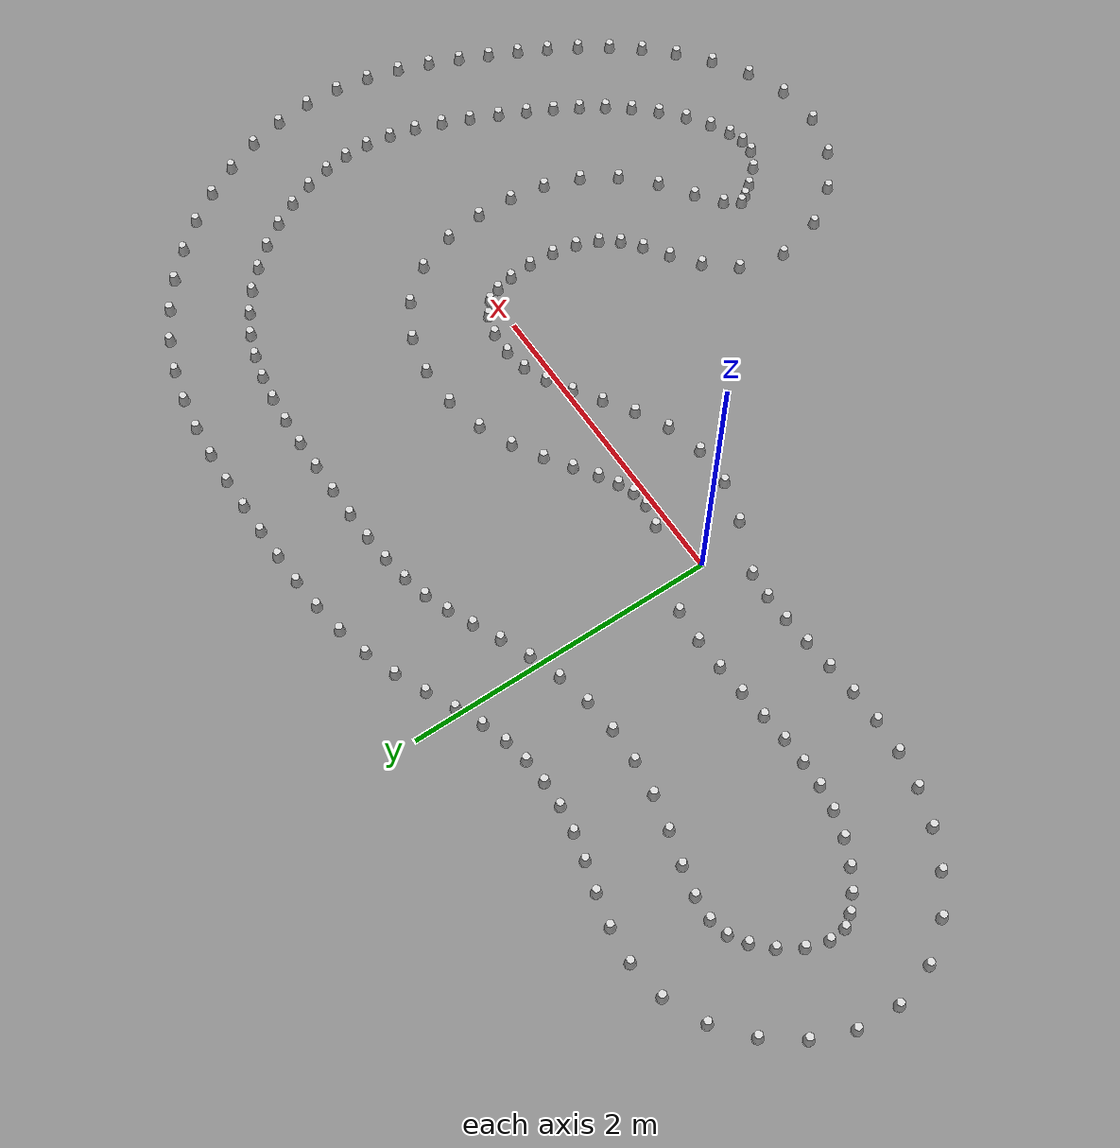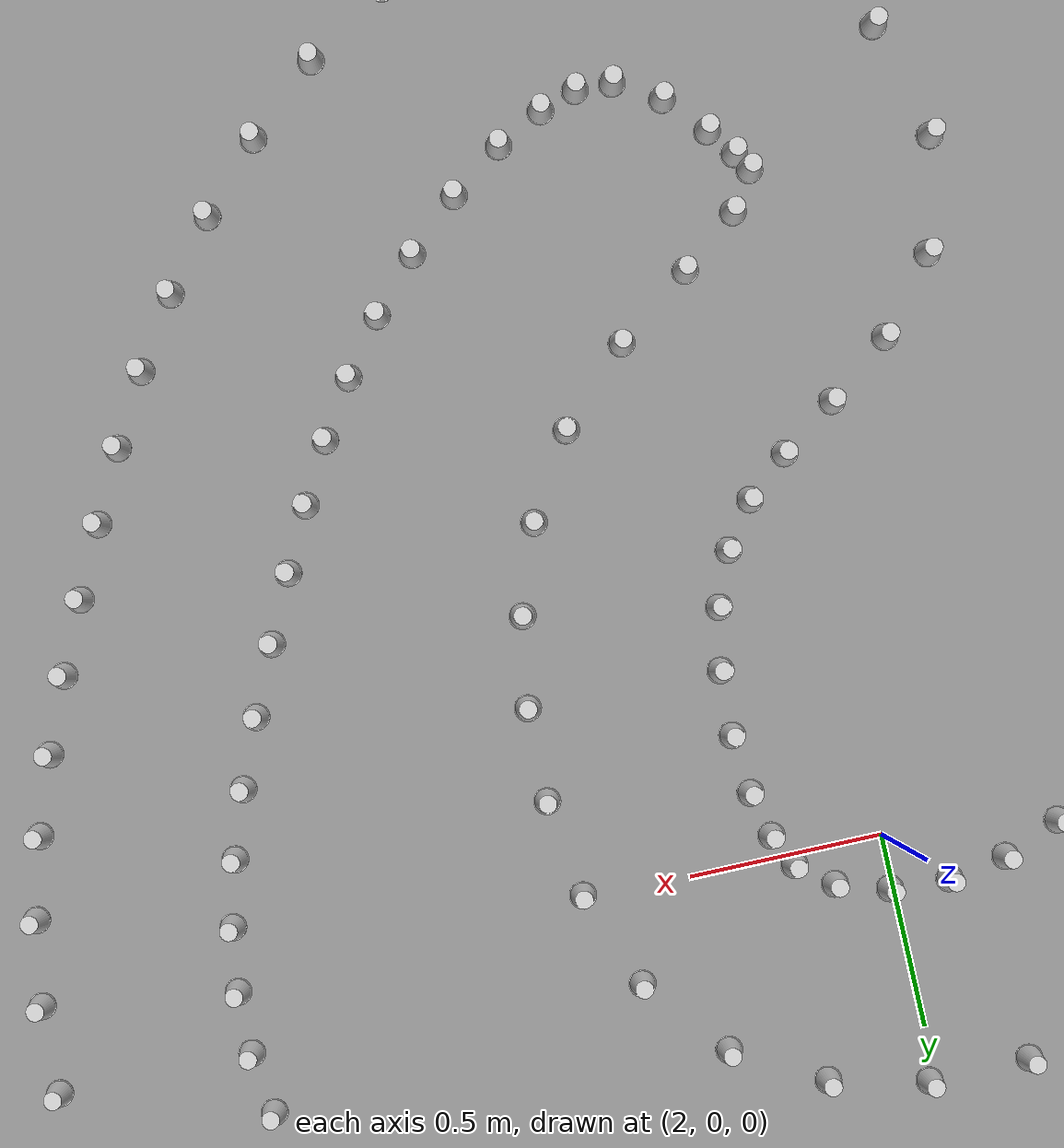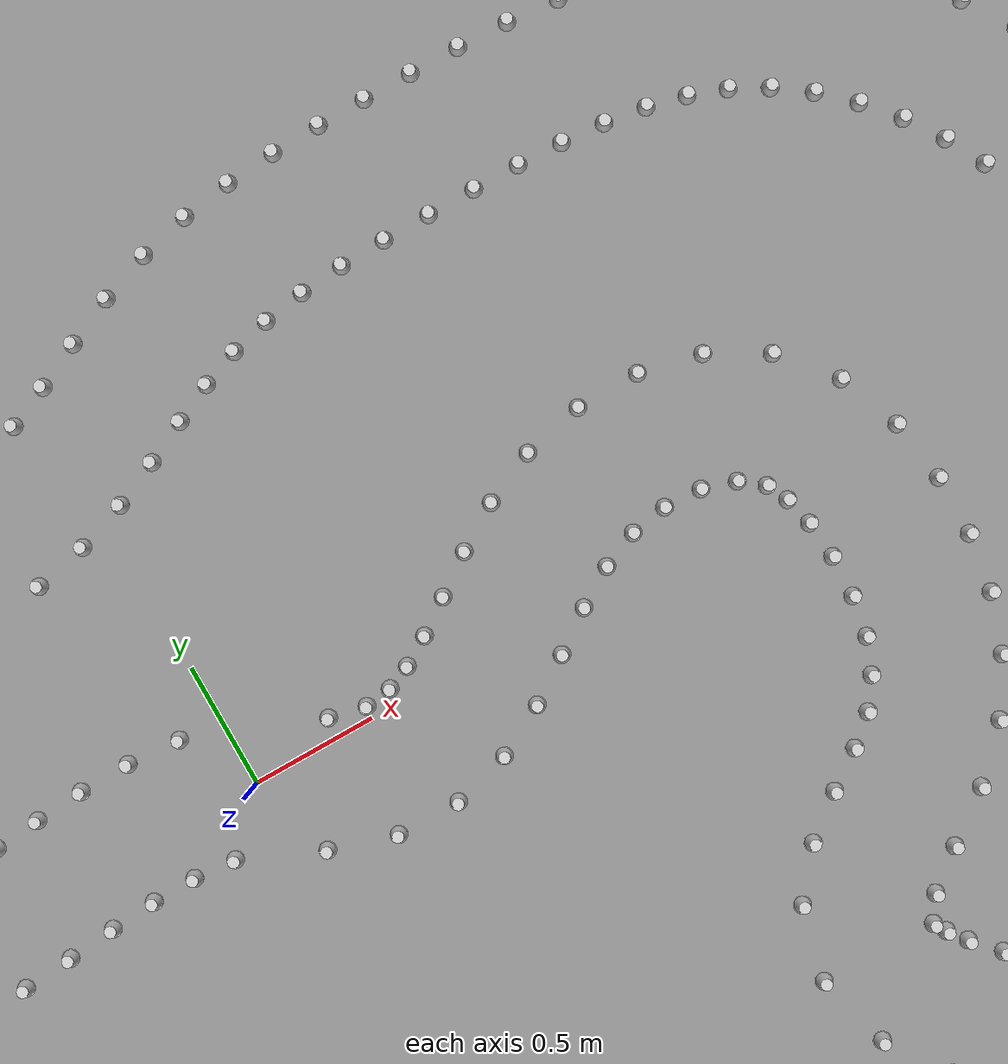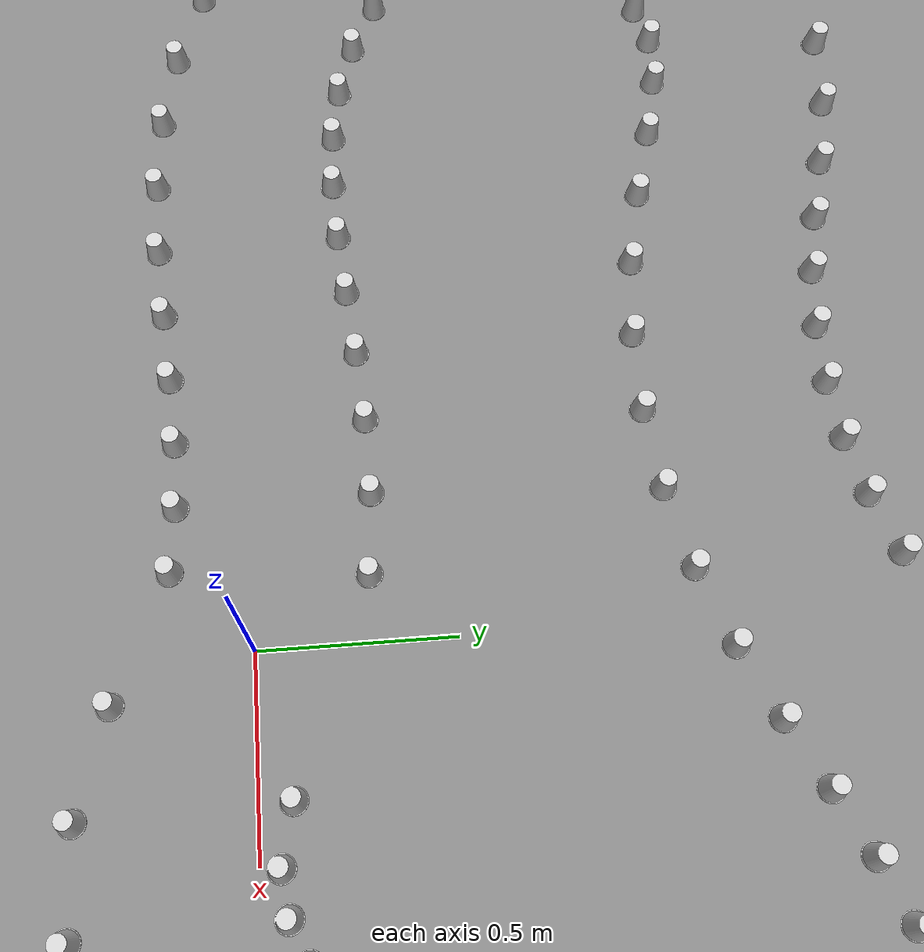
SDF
<?xml version='1.0' encoding='UTF-8'?>
<sdf version="1.4">
  <model name="some track">
    <include>
      <uri>model://cone_yellow</uri>
      <pose>0.10806867978345727 -0.3510957375104182 0 0 0 0</pose>
      <name>cone_right_0</name>
    </include>
    <include>
      <uri>model://cone_yellow</uri>
      <pose>0.37071405419927905 -0.4328431370972129 0 0 0 0</pose>
      <name>cone_right_1</name>
    </include>
    <include>
      <uri>model://cone_yellow</uri>
      <pose>0.6285052913206914 -0.4369264111387018 0 0 0 0</pose>
      <name>cone_right_2</name>
    </include>
    <include>
      <uri>model://cone_yellow</uri>
      <pose>0.8649515672007367 -0.37195761095079005 0 0 0 0</pose>
      <name>cone_right_3</name>
    </include>
    <include>
      <uri>model://cone_yellow</uri>
      <pose>1.0679124369581585 -0.26561798624160415 0 0 0 0</pose>
      <name>cone_right_4</name>
    </include>
    <include>
      <uri>model://cone_yellow</uri>
      <pose>1.2437053670939795 -0.14619759484670644 0 0 0 0</pose>
      <name>cone_right_5</name>
    </include>
    <include>
      <uri>model://cone_yellow</uri>
      <pose>1.4038176292596791 -0.0330357180250723 0 0 0 0</pose>
      <name>cone_right_6</name>
    </include>
    <include>
      <uri>model://cone_yellow</uri>
      <pose>1.5563454451901821 0.05964842265900802 0 0 0 0</pose>
      <name>cone_right_7</name>
    </include>
    <include>
      <uri>model://cone_yellow</uri>
      <pose>1.7058293318458795 0.12097913928125698 0 0 0 0</pose>
      <name>cone_right_8</name>
    </include>
    <include>
      <uri>model://cone_yellow</uri>
      <pose>1.8570160648529523 0.14606397107937272 0 0 0 0</pose>
      <name>cone_right_9</name>
    </include>
    <include>
      <uri>model://cone_yellow</uri>
      <pose>2.0103848713780446 0.13791186375818315 0 0 0 0</pose>
      <name>cone_right_10</name>
    </include>
    <include>
      <uri>model://cone_yellow</uri>
      <pose>2.144935152615976 0.09594175182890519 0 0 0 0</pose>
      <name>cone_right_11</name>
    </include>
    <include>
      <uri>model://cone_yellow</uri>
      <pose>2.2347253854991163 0.026377761263574995 0 0 0 0</pose>
      <name>cone_right_12</name>
    </include>
    <include>
      <uri>model://cone_yellow</uri>
      <pose>2.275957598559696 -0.05904760210889351 0 0 0 0</pose>
      <name>cone_right_13</name>
    </include>
    <include>
      <uri>model://cone_yellow</uri>
      <pose>2.304107577638766 -0.1767105913695149 0 0 0 0</pose>
      <name>cone_right_14</name>
    </include>
    <include>
      <uri>model://cone_yellow</uri>
      <pose>2.3176501076443294 -0.3297327340860391 0 0 0 0</pose>
      <name>cone_right_15</name>
    </include>
    <include>
      <uri>model://cone_yellow</uri>
      <pose>2.3106537596096657 -0.4974228092794692 0 0 0 0</pose>
      <name>cone_right_16</name>
    </include>
    <include>
      <uri>model://cone_yellow</uri>
      <pose>2.280170122506995 -0.655995264267445 0 0 0 0</pose>
      <name>cone_right_17</name>
    </include>
    <include>
      <uri>model://cone_yellow</uri>
      <pose>2.2245029126510754 -0.7926733279705555 0 0 0 0</pose>
      <name>cone_right_18</name>
    </include>
    <include>
      <uri>model://cone_yellow</uri>
      <pose>2.1430553206487035 -0.9062019138436952 0 0 0 0</pose>
      <name>cone_right_19</name>
    </include>
    <include>
      <uri>model://cone_yellow</uri>
      <pose>2.032068460034787 -1.0016545619188646 0 0 0 0</pose>
      <name>cone_right_20</name>
    </include>
    <include>
      <uri>model://cone_yellow</uri>
      <pose>1.8848763346627555 -1.1054517247424098 0 0 0 0</pose>
      <name>cone_right_21</name>
    </include>
    <include>
      <uri>model://cone_yellow</uri>
      <pose>1.718198731530026 -1.235636255994414 0 0 0 0</pose>
      <name>cone_right_22</name>
    </include>
    <include>
      <uri>model://cone_yellow</uri>
      <pose>1.5662160444261144 -1.4199843507388406 0 0 0 0</pose>
      <name>cone_right_23</name>
    </include>
    <include>
      <uri>model://cone_yellow</uri>
      <pose>1.4948194487415893 -1.7115225978364978 0 0 0 0</pose>
      <name>cone_right_24</name>
    </include>
    <include>
      <uri>model://cone_yellow</uri>
      <pose>1.575473803442982 -2.015007464635909 0 0 0 0</pose>
      <name>cone_right_25</name>
    </include>
    <include>
      <uri>model://cone_yellow</uri>
      <pose>1.7441786409229332 -2.2535267850802936 0 0 0 0</pose>
      <name>cone_right_26</name>
    </include>
    <include>
      <uri>model://cone_yellow</uri>
      <pose>1.9677488768502536 -2.4249657413902876 0 0 0 0</pose>
      <name>cone_right_27</name>
    </include>
    <include>
      <uri>model://cone_yellow</uri>
      <pose>2.2412495621944464 -2.5064942236239625 0 0 0 0</pose>
      <name>cone_right_28</name>
    </include>
    <include>
      <uri>model://cone_yellow</uri>
      <pose>2.5232072303301307 -2.4815937812488325 0 0 0 0</pose>
      <name>cone_right_29</name>
    </include>
    <include>
      <uri>model://cone_yellow</uri>
      <pose>2.7742721420513785 -2.380557124308995 0 0 0 0</pose>
      <name>cone_right_30</name>
    </include>
    <include>
      <uri>model://cone_yellow</uri>
      <pose>2.9914910156931027 -2.2382249664186835 0 0 0 0</pose>
      <name>cone_right_31</name>
    </include>
    <include>
      <uri>model://cone_yellow</uri>
      <pose>3.17792649547707 -2.0764639412313017 0 0 0 0</pose>
      <name>cone_right_32</name>
    </include>
    <include>
      <uri>model://cone_yellow</uri>
      <pose>3.3352189229942635 -1.9087999569287255 0 0 0 0</pose>
      <name>cone_right_33</name>
    </include>
    <include>
      <uri>model://cone_yellow</uri>
      <pose>3.4694923332802015 -1.7365065553970955 0 0 0 0</pose>
      <name>cone_right_34</name>
    </include>
    <include>
      <uri>model://cone_yellow</uri>
      <pose>3.585039381978961 -1.5607407068125956 0 0 0 0</pose>
      <name>cone_right_35</name>
    </include>
    <include>
      <uri>model://cone_yellow</uri>
      <pose>3.6859615227179434 -1.3832365438609382 0 0 0 0</pose>
      <name>cone_right_36</name>
    </include>
    <include>
      <uri>model://cone_yellow</uri>
      <pose>3.776756562346189 -1.20532282425605 0 0 0 0</pose>
      <name>cone_right_37</name>
    </include>
    <include>
      <uri>model://cone_yellow</uri>
      <pose>3.8620503353341316 -1.0277724095366967 0 0 0 0</pose>
      <name>cone_right_38</name>
    </include>
    <include>
      <uri>model://cone_yellow</uri>
      <pose>3.9449333925626875 -0.8478788391132766 0 0 0 0</pose>
      <name>cone_right_39</name>
    </include>
    <include>
      <uri>model://cone_yellow</uri>
      <pose>4.023830812805049 -0.6597577392440686 0 0 0 0</pose>
      <name>cone_right_40</name>
    </include>
    <include>
      <uri>model://cone_yellow</uri>
      <pose>4.093623040994661 -0.4625050220177086 0 0 0 0</pose>
      <name>cone_right_41</name>
    </include>
    <include>
      <uri>model://cone_yellow</uri>
      <pose>4.148479005426398 -0.2556395512708997 0 0 0 0</pose>
      <name>cone_right_42</name>
    </include>
    <include>
      <uri>model://cone_yellow</uri>
      <pose>4.18198590625303 -0.038723621801074 0 0 0 0</pose>
      <name>cone_right_43</name>
    </include>
    <include>
      <uri>model://cone_yellow</uri>
      <pose>4.187118005407224 0.18793619976483975 0 0 0 0</pose>
      <name>cone_right_44</name>
    </include>
    <include>
      <uri>model://cone_yellow</uri>
      <pose>4.159848504458583 0.41820390756935827 0 0 0 0</pose>
      <name>cone_right_45</name>
    </include>
    <include>
      <uri>model://cone_yellow</uri>
      <pose>4.102661222478233 0.6433773608710858 0 0 0 0</pose>
      <name>cone_right_46</name>
    </include>
    <include>
      <uri>model://cone_yellow</uri>
      <pose>4.018899352163004 0.8603234352674015 0 0 0 0</pose>
      <name>cone_right_47</name>
    </include>
    <include>
      <uri>model://cone_yellow</uri>
      <pose>3.9113877283626186 1.066517374008716 0 0 0 0</pose>
      <name>cone_right_48</name>
    </include>
    <include>
      <uri>model://cone_yellow</uri>
      <pose>3.7825092979829975 1.2594242225590704 0 0 0 0</pose>
      <name>cone_right_49</name>
    </include>
    <include>
      <uri>model://cone_yellow</uri>
      <pose>3.6342863940175443 1.4363843226847217 0 0 0 0</pose>
      <name>cone_right_50</name>
    </include>
    <include>
      <uri>model://cone_yellow</uri>
      <pose>3.468433940177946 1.5945364462928413 0 0 0 0</pose>
      <name>cone_right_51</name>
    </include>
    <include>
      <uri>model://cone_yellow</uri>
      <pose>3.28639926553553 1.7307256792168295 0 0 0 0</pose>
      <name>cone_right_52</name>
    </include>
    <include>
      <uri>model://cone_yellow</uri>
      <pose>3.0894898755314357 1.8413939138938185 0 0 0 0</pose>
      <name>cone_right_53</name>
    </include>
    <include>
      <uri>model://cone_yellow</uri>
      <pose>2.881793246858548 1.9240703892709048 0 0 0 0</pose>
      <name>cone_right_54</name>
    </include>
    <include>
      <uri>model://cone_yellow</uri>
      <pose>2.670070183167121 1.9807054399779687 0 0 0 0</pose>
      <name>cone_right_55</name>
    </include>
    <include>
      <uri>model://cone_yellow</uri>
      <pose>2.4575551331675394 2.0163603913874466 0 0 0 0</pose>
      <name>cone_right_56</name>
    </include>
    <include>
      <uri>model://cone_yellow</uri>
      <pose>2.2462229857992533 2.0363371618146715 0 0 0 0</pose>
      <name>cone_right_57</name>
    </include>
    <include>
      <uri>model://cone_yellow</uri>
      <pose>2.037453766363674 2.045641828317779 0 0 0 0</pose>
      <name>cone_right_58</name>
    </include>
    <include>
      <uri>model://cone_yellow</uri>
      <pose>1.8324178295527642 2.0488876605486617 0 0 0 0</pose>
      <name>cone_right_59</name>
    </include>
    <include>
      <uri>model://cone_yellow</uri>
      <pose>1.632122488877368 2.0501853841343047 0 0 0 0</pose>
      <name>cone_right_60</name>
    </include>
    <include>
      <uri>model://cone_yellow</uri>
      <pose>1.4330730018119584 2.049773306986464 0 0 0 0</pose>
      <name>cone_right_61</name>
    </include>
    <include>
      <uri>model://cone_yellow</uri>
      <pose>1.2313143994656377 2.043908344652148 0 0 0 0</pose>
      <name>cone_right_62</name>
    </include>
    <include>
      <uri>model://cone_yellow</uri>
      <pose>1.0272766181419422 2.028347990599178 0 0 0 0</pose>
      <name>cone_right_63</name>
    </include>
    <include>
      <uri>model://cone_yellow</uri>
      <pose>0.8216409826453225 1.998497783669258 0 0 0 0</pose>
      <name>cone_right_64</name>
    </include>
    <include>
      <uri>model://cone_yellow</uri>
      <pose>0.6153673160194553 1.9494063990157342 0 0 0 0</pose>
      <name>cone_right_65</name>
    </include>
    <include>
      <uri>model://cone_yellow</uri>
      <pose>0.4107325757053944 1.8769030603657844 0 0 0 0</pose>
      <name>cone_right_66</name>
    </include>
    <include>
      <uri>model://cone_yellow</uri>
      <pose>0.2174032236135958 1.789841472590485 0 0 0 0</pose>
      <name>cone_right_67</name>
    </include>
    <include>
      <uri>model://cone_yellow</uri>
      <pose>0.03818030860539977 1.7034920191378928 0 0 0 0</pose>
      <name>cone_right_68</name>
    </include>
    <include>
      <uri>model://cone_yellow</uri>
      <pose>-0.13048017638817333 1.6292281568680251 0 0 0 0</pose>
      <name>cone_right_69</name>
    </include>
    <include>
      <uri>model://cone_yellow</uri>
      <pose>-0.29087667794513383 1.576179395634047 0 0 0 0</pose>
      <name>cone_right_70</name>
    </include>
    <include>
      <uri>model://cone_yellow</uri>
      <pose>-0.44930885448068963 1.5449956240646694 0 0 0 0</pose>
      <name>cone_right_71</name>
    </include>
    <include>
      <uri>model://cone_yellow</uri>
      <pose>-0.6122515939375015 1.5322528647168072 0 0 0 0</pose>
      <name>cone_right_72</name>
    </include>
    <include>
      <uri>model://cone_yellow</uri>
      <pose>-0.7790943255590582 1.5377034722690452 0 0 0 0</pose>
      <name>cone_right_73</name>
    </include>
    <include>
      <uri>model://cone_yellow</uri>
      <pose>-0.9485861701289358 1.5613042777744812 0 0 0 0</pose>
      <name>cone_right_74</name>
    </include>
    <include>
      <uri>model://cone_yellow</uri>
      <pose>-1.1199808553145727 1.602600579408511 0 0 0 0</pose>
      <name>cone_right_75</name>
    </include>
    <include>
      <uri>model://cone_yellow</uri>
      <pose>-1.3029705136230758 1.6547963221581237 0 0 0 0</pose>
      <name>cone_right_76</name>
    </include>
    <include>
      <uri>model://cone_yellow</uri>
      <pose>-1.5054122684394475 1.7030935143364136 0 0 0 0</pose>
      <name>cone_right_77</name>
    </include>
    <include>
      <uri>model://cone_yellow</uri>
      <pose>-1.729652474254516 1.7256403686554591 0 0 0 0</pose>
      <name>cone_right_78</name>
    </include>
    <include>
      <uri>model://cone_yellow</uri>
      <pose>-1.9779711784090308 1.6918484148107185 0 0 0 0</pose>
      <name>cone_right_79</name>
    </include>
    <include>
      <uri>model://cone_yellow</uri>
      <pose>-2.229177209771272 1.5741286828618515 0 0 0 0</pose>
      <name>cone_right_80</name>
    </include>
    <include>
      <uri>model://cone_yellow</uri>
      <pose>-2.4385682200976477 1.3943667900161134 0 0 0 0</pose>
      <name>cone_right_81</name>
    </include>
    <include>
      <uri>model://cone_yellow</uri>
      <pose>-2.5975309892152953 1.1760221515127638 0 0 0 0</pose>
      <name>cone_right_82</name>
    </include>
    <include>
      <uri>model://cone_yellow</uri>
      <pose>-2.6977482931235035 0.93008566065435 0 0 0 0</pose>
      <name>cone_right_83</name>
    </include>
    <include>
      <uri>model://cone_yellow</uri>
      <pose>-2.7197442175858777 0.6616358891265923 0 0 0 0</pose>
      <name>cone_right_84</name>
    </include>
    <include>
      <uri>model://cone_yellow</uri>
      <pose>-2.635800029489961 0.39037293201776185 0 0 0 0</pose>
      <name>cone_right_85</name>
    </include>
    <include>
      <uri>model://cone_yellow</uri>
      <pose>-2.467931840176189 0.16995847560529542 0 0 0 0</pose>
      <name>cone_right_86</name>
    </include>
    <include>
      <uri>model://cone_yellow</uri>
      <pose>-2.2588656612170794 0.005827235656673063 0 0 0 0</pose>
      <name>cone_right_87</name>
    </include>
    <include>
      <uri>model://cone_yellow</uri>
      <pose>-2.032205278276173 -0.11236410947061982 0 0 0 0</pose>
      <name>cone_right_88</name>
    </include>
    <include>
      <uri>model://cone_yellow</uri>
      <pose>-1.80228689852342 -0.1898166331580345 0 0 0 0</pose>
      <name>cone_right_89</name>
    </include>
    <include>
      <uri>model://cone_yellow</uri>
      <pose>-1.5749801581884557 -0.23187500779975068 0 0 0 0</pose>
      <name>cone_right_90</name>
    </include>
    <include>
      <uri>model://cone_yellow</uri>
      <pose>-1.3542667810502194 -0.2460933852054405 0 0 0 0</pose>
      <name>cone_right_91</name>
    </include>
    <include>
      <uri>model://cone_yellow</uri>
      <pose>-1.1422084389227418 -0.24132816961400455 0 0 0 0</pose>
      <name>cone_right_92</name>
    </include>
    <include>
      <uri>model://cone_yellow</uri>
      <pose>-0.9393105831872635 -0.22632539704416071 0 0 0 0</pose>
      <name>cone_right_93</name>
    </include>
    <include>
      <uri>model://cone_yellow</uri>
      <pose>-0.7453267427142705 -0.20905768561484717 0 0 0 0</pose>
      <name>cone_right_94</name>
    </include>
    <include>
      <uri>model://cone_yellow</uri>
      <pose>-0.5598932155156982 -0.1965804388748037 0 0 0 0</pose>
      <name>cone_right_95</name>
    </include>
    <include>
      <uri>model://cone_yellow</uri>
      <pose>-0.3827167577551564 -0.19502998273427824 0 0 0 0</pose>
      <name>cone_right_96</name>
    </include>
    <include>
      <uri>model://cone_yellow</uri>
      <pose>-0.21328052147826695 -0.2096317413130372 0 0 0 0</pose>
      <name>cone_right_97</name>
    </include>
    <include>
      <uri>model://cone_blue</uri>
      <pose>0.3581064667551549 0.08189514586508193 0 0 0 0</pose>
      <name>cone_left_0</name>
    </include>
    <include>
      <uri>model://cone_blue</uri>
      <pose>0.5057299817799402 0.04858255737653833 0 0 0 0</pose>
      <name>cone_left_1</name>
    </include>
    <include>
      <uri>model://cone_blue</uri>
      <pose>0.6145818102483052 0.06287968793855722 0 0 0 0</pose>
      <name>cone_left_2</name>
    </include>
    <include>
      <uri>model://cone_blue</uri>
      <pose>0.7134332093543835 0.10453182989291268 0 0 0 0</pose>
      <name>cone_left_3</name>
    </include>
    <include>
      <uri>model://cone_blue</uri>
      <pose>0.8267050572266077 0.17235347397360146 0 0 0 0</pose>
      <name>cone_left_4</name>
    </include>
    <include>
      <uri>model://cone_blue</uri>
      <pose>0.9603603206111302 0.26576791904205577 0 0 0 0</pose>
      <name>cone_left_5</name>
    </include>
    <include>
      <uri>model://cone_blue</uri>
      <pose>1.1151921611036464 0.37524768738312064 0 0 0 0</pose>
      <name>cone_left_6</name>
    </include>
    <include>
      <uri>model://cone_blue</uri>
      <pose>1.2953847902164075 0.4861452415869557 0 0 0 0</pose>
      <name>cone_left_7</name>
    </include>
    <include>
      <uri>model://cone_blue</uri>
      <pose>1.5086781242361995 0.580469510603709 0 0 0 0</pose>
      <name>cone_left_8</name>
    </include>
    <include>
      <uri>model://cone_blue</uri>
      <pose>1.758163424013462 0.636194724449388 0 0 0 0</pose>
      <name>cone_left_9</name>
    </include>
    <include>
      <uri>model://cone_blue</uri>
      <pose>2.018240652610797 0.637850146650405 0 0 0 0</pose>
      <name>cone_left_10</name>
    </include>
    <include>
      <uri>model://cone_blue</uri>
      <pose>2.2699675997602604 0.5800562911283479 0 0 0 0</pose>
      <name>cone_left_11</name>
    </include>
    <include>
      <uri>model://cone_blue</uri>
      <pose>2.4992719916327735 0.45065961708958585 0 0 0 0</pose>
      <name>cone_left_12</name>
    </include>
    <include>
      <uri>model://cone_blue</uri>
      <pose>2.6781801023296063 0.23796596233061865 0 0 0 0</pose>
      <name>cone_left_13</name>
    </include>
    <include>
      <uri>model://cone_blue</uri>
      <pose>2.77702859554006 -0.014396972633428873 0 0 0 0</pose>
      <name>cone_left_14</name>
    </include>
    <include>
      <uri>model://cone_blue</uri>
      <pose>2.8138622280532193 -0.2683036566119842 0 0 0 0</pose>
      <name>cone_left_15</name>
    </include>
    <include>
      <uri>model://cone_blue</uri>
      <pose>2.8104936426648313 -0.5100755286472097 0 0 0 0</pose>
      <name>cone_left_16</name>
    </include>
    <include>
      <uri>model://cone_blue</uri>
      <pose>2.772701936677323 -0.7420906301711082 0 0 0 0</pose>
      <name>cone_left_17</name>
    </include>
    <include>
      <uri>model://cone_blue</uri>
      <pose>2.6928188166188796 -0.9678310114755012 0 0 0 0</pose>
      <name>cone_left_18</name>
    </include>
    <include>
      <uri>model://cone_blue</uri>
      <pose>2.561608703541177 -1.1797216858333384 0 0 0 0</pose>
      <name>cone_left_19</name>
    </include>
    <include>
      <uri>model://cone_blue</uri>
      <pose>2.3755021928419193 -1.36504590905052 0 0 0 0</pose>
      <name>cone_left_20</name>
    </include>
    <include>
      <uri>model://cone_blue</uri>
      <pose>2.1778712059950838 -1.5106109593316666 0 0 0 0</pose>
      <name>cone_left_21</name>
    </include>
    <include>
      <uri>model://cone_blue</uri>
      <pose>2.0263063638259005 -1.6294251422279267 0 0 0 0</pose>
      <name>cone_left_22</name>
    </include>
    <include>
      <uri>model://cone_blue</uri>
      <pose>1.9621457790342716 -1.7253360254568846 0 0 0 0</pose>
      <name>cone_left_23</name>
    </include>
    <include>
      <uri>model://cone_blue</uri>
      <pose>1.9909374773214275 -1.7737070148399174 0 0 0 0</pose>
      <name>cone_left_24</name>
    </include>
    <include>
      <uri>model://cone_blue</uri>
      <pose>2.0457249867474885 -1.8451138961858011 0 0 0 0</pose>
      <name>cone_left_25</name>
    </include>
    <include>
      <uri>model://cone_blue</uri>
      <pose>2.1403033187560676 -1.9484280476007763 0 0 0 0</pose>
      <name>cone_left_26</name>
    </include>
    <include>
      <uri>model://cone_blue</uri>
      <pose>2.2560473448346703 -2.016451367888157 0 0 0 0</pose>
      <name>cone_left_27</name>
    </include>
    <include>
      <uri>model://cone_blue</uri>
      <pose>2.352090951319699 -2.0189348052380756 0 0 0 0</pose>
      <name>cone_left_28</name>
    </include>
    <include>
      <uri>model://cone_blue</uri>
      <pose>2.4491976847934667 -1.9871015293687282 0 0 0 0</pose>
      <name>cone_left_29</name>
    </include>
    <include>
      <uri>model://cone_blue</uri>
      <pose>2.5725552497554895 -1.9230527031691673 0 0 0 0</pose>
      <name>cone_left_30</name>
    </include>
    <include>
      <uri>model://cone_blue</uri>
      <pose>2.7109549115541824 -1.82434153563828 0 0 0 0</pose>
      <name>cone_left_31</name>
    </include>
    <include>
      <uri>model://cone_blue</uri>
      <pose>2.847172009651097 -1.7014953157357864 0 0 0 0</pose>
      <name>cone_left_32</name>
    </include>
    <include>
      <uri>model://cone_blue</uri>
      <pose>2.968717634376448 -1.5686870265049013 0 0 0 0</pose>
      <name>cone_left_33</name>
    </include>
    <include>
      <uri>model://cone_blue</uri>
      <pose>3.0736692151223135 -1.4310166879190296 0 0 0 0</pose>
      <name>cone_left_34</name>
    </include>
    <include>
      <uri>model://cone_blue</uri>
      <pose>3.166206367588582 -1.2876493190745917 0 0 0 0</pose>
      <name>cone_left_35</name>
    </include>
    <include>
      <uri>model://cone_blue</uri>
      <pose>3.2507001954524535 -1.1371723713630217 0 0 0 0</pose>
      <name>cone_left_36</name>
    </include>
    <include>
      <uri>model://cone_blue</uri>
      <pose>3.3311254491694884 -0.9785786711475419 0 0 0 0</pose>
      <name>cone_left_37</name>
    </include>
    <include>
      <uri>model://cone_blue</uri>
      <pose>3.4112839449200956 -0.8114170045358036 0 0 0 0</pose>
      <name>cone_left_38</name>
    </include>
    <include>
      <uri>model://cone_blue</uri>
      <pose>3.4907813441580706 -0.6387235931119144 0 0 0 0</pose>
      <name>cone_left_39</name>
    </include>
    <include>
      <uri>model://cone_blue</uri>
      <pose>3.5625936327148247 -0.46672856087349746 0 0 0 0</pose>
      <name>cone_left_40</name>
    </include>
    <include>
      <uri>model://cone_blue</uri>
      <pose>3.621920527482872 -0.29668361584027925 0 0 0 0</pose>
      <name>cone_left_41</name>
    </include>
    <include>
      <uri>model://cone_blue</uri>
      <pose>3.664673261993296 -0.12941751428391457 0 0 0 0</pose>
      <name>cone_left_42</name>
    </include>
    <include>
      <uri>model://cone_blue</uri>
      <pose>3.687344797919285 0.03428441848466543 0 0 0 0</pose>
      <name>cone_left_43</name>
    </include>
    <include>
      <uri>model://cone_blue</uri>
      <pose>3.687158900166706 0.19433097005790875 0 0 0 0</pose>
      <name>cone_left_44</name>
    </include>
    <include>
      <uri>model://cone_blue</uri>
      <pose>3.6639799659353156 0.3540603770865511 0 0 0 0</pose>
      <name>cone_left_45</name>
    </include>
    <include>
      <uri>model://cone_blue</uri>
      <pose>3.6191660978461377 0.5159706716550376 0 0 0 0</pose>
      <name>cone_left_46</name>
    </include>
    <include>
      <uri>model://cone_blue</uri>
      <pose>3.5538250952169417 0.6767316720369455 0 0 0 0</pose>
      <name>cone_left_47</name>
    </include>
    <include>
      <uri>model://cone_blue</uri>
      <pose>3.4695831152126075 0.8324048288528256 0 0 0 0</pose>
      <name>cone_left_48</name>
    </include>
    <include>
      <uri>model://cone_blue</uri>
      <pose>3.3685082029418085 0.9790617905095957 0 0 0 0</pose>
      <name>cone_left_49</name>
    </include>
    <include>
      <uri>model://cone_blue</uri>
      <pose>3.2530290174257495 1.1128989091119579 0 0 0 0</pose>
      <name>cone_left_50</name>
    </include>
    <include>
      <uri>model://cone_blue</uri>
      <pose>3.1258816269673333 1.2303141066237064 0 0 0 0</pose>
      <name>cone_left_51</name>
    </include>
    <include>
      <uri>model://cone_blue</uri>
      <pose>2.9900696945098355 1.3279989910823975 0 0 0 0</pose>
      <name>cone_left_52</name>
    </include>
    <include>
      <uri>model://cone_blue</uri>
      <pose>2.8487209581702673 1.4031812618255208 0 0 0 0</pose>
      <name>cone_left_53</name>
    </include>
    <include>
      <uri>model://cone_blue</uri>
      <pose>2.70150733028896 1.457704665523261 0 0 0 0</pose>
      <name>cone_left_54</name>
    </include>
    <include>
      <uri>model://cone_blue</uri>
      <pose>2.544510740951751 1.4967273139530781 0 0 0 0</pose>
      <name>cone_left_55</name>
    </include>
    <include>
      <uri>model://cone_blue</uri>
      <pose>2.3772741600590113 1.5228475087220112 0 0 0 0</pose>
      <name>cone_left_56</name>
    </include>
    <include>
      <uri>model://cone_blue</uri>
      <pose>2.2006001172820335 1.5384229584941993 0 0 0 0</pose>
      <name>cone_left_57</name>
    </include>
    <include>
      <uri>model://cone_blue</uri>
      <pose>2.0158860059301613 1.5461072131909768 0 0 0 0</pose>
      <name>cone_left_58</name>
    </include>
    <include>
      <uri>model://cone_blue</uri>
      <pose>1.8247388899221773 1.5489466301399244 0 0 0 0</pose>
      <name>cone_left_59</name>
    </include>
    <include>
      <uri>model://cone_blue</uri>
      <pose>1.6289079100471275 1.5501957177581442 0 0 0 0</pose>
      <name>cone_left_60</name>
    </include>
    <include>
      <uri>model://cone_blue</uri>
      <pose>1.434131039945501 1.5497744264324091 0 0 0 0</pose>
      <name>cone_left_61</name>
    </include>
    <include>
      <uri>model://cone_blue</uri>
      <pose>1.2460753933285251 1.5441262790873864 0 0 0 0</pose>
      <name>cone_left_62</name>
    </include>
    <include>
      <uri>model://cone_blue</uri>
      <pose>1.0659986404691626 1.5298496405649074 0 0 0 0</pose>
      <name>cone_left_63</name>
    </include>
    <include>
      <uri>model://cone_blue</uri>
      <pose>0.8949070631394557 1.5038948303329205 0 0 0 0</pose>
      <name>cone_left_64</name>
    </include>
    <include>
      <uri>model://cone_blue</uri>
      <pose>0.7335284448722224 1.463569031547731 0 0 0 0</pose>
      <name>cone_left_65</name>
    </include>
    <include>
      <uri>model://cone_blue</uri>
      <pose>0.5809153654798264 1.406756468264351 0 0 0 0</pose>
      <name>cone_left_66</name>
    </include>
    <include>
      <uri>model://cone_blue</uri>
      <pose>0.4244083741722593 1.3347053746569273 0 0 0 0</pose>
      <name>cone_left_67</name>
    </include>
    <include>
      <uri>model://cone_blue</uri>
      <pose>0.255346817938755 1.2531158350162568 0 0 0 0</pose>
      <name>cone_left_68</name>
    </include>
    <include>
      <uri>model://cone_blue</uri>
      <pose>0.0713636983151452 1.171779744208465 0 0 0 0</pose>
      <name>cone_left_69</name>
    </include>
    <include>
      <uri>model://cone_blue</uri>
      <pose>-0.13102493318746275 1.1024205754544876 0 0 0 0</pose>
      <name>cone_left_70</name>
    </include>
    <include>
      <uri>model://cone_blue</uri>
      <pose>-0.347296280886446 1.0555128002304932 0 0 0 0</pose>
      <name>cone_left_71</name>
    </include>
    <include>
      <uri>model://cone_blue</uri>
      <pose>-0.5680606052766526 1.0342095367611197 0 0 0 0</pose>
      <name>cone_left_72</name>
    </include>
    <include>
      <uri>model://cone_blue</uri>
      <pose>-0.790746702178685 1.037839268590572 0 0 0 0</pose>
      <name>cone_left_73</name>
    </include>
    <include>
      <uri>model://cone_blue</uri>
      <pose>-1.0134236758730613 1.0655260028885396 0 0 0 0</pose>
      <name>cone_left_74</name>
    </include>
    <include>
      <uri>model://cone_blue</uri>
      <pose>-1.2336955502510645 1.115703292339153 0 0 0 0</pose>
      <name>cone_left_75</name>
    </include>
    <include>
      <uri>model://cone_blue</uri>
      <pose>-1.4394227253812257 1.1737757468120071 0 0 0 0</pose>
      <name>cone_left_76</name>
    </include>
    <include>
      <uri>model://cone_blue</uri>
      <pose>-1.6208937894437392 1.216612252306173 0 0 0 0</pose>
      <name>cone_left_77</name>
    </include>
    <include>
      <uri>model://cone_blue</uri>
      <pose>-1.7739271462464525 1.2276044729410975 0 0 0 0</pose>
      <name>cone_left_78</name>
    </include>
    <include>
      <uri>model://cone_blue</uri>
      <pose>-1.8944075067472825 1.1988807558528438 0 0 0 0</pose>
      <name>cone_left_79</name>
    </include>
    <include>
      <uri>model://cone_blue</uri>
      <pose>-1.9971996893910808 1.1311993092160546 0 0 0 0</pose>
      <name>cone_left_80</name>
    </include>
    <include>
      <uri>model://cone_blue</uri>
      <pose>-2.1017650633300455 1.0248216187699206 0 0 0 0</pose>
      <name>cone_left_81</name>
    </include>
    <include>
      <uri>model://cone_blue</uri>
      <pose>-2.186497236524681 0.891327131975943 0 0 0 0</pose>
      <name>cone_left_82</name>
    </include>
    <include>
      <uri>model://cone_blue</uri>
      <pose>-2.22949379678603 0.75476388031962 0 0 0 0</pose>
      <name>cone_left_83</name>
    </include>
    <include>
      <uri>model://cone_blue</uri>
      <pose>-2.220018082882289 0.6450892793768381 0 0 0 0</pose>
      <name>cone_left_84</name>
    </include>
    <include>
      <uri>model://cone_blue</uri>
      <pose>-2.1698400508246665 0.5717049432078385 0 0 0 0</pose>
      <name>cone_left_85</name>
    </include>
    <include>
      <uri>model://cone_blue</uri>
      <pose>-2.0851762364251885 0.4916697557886405 0 0 0 0</pose>
      <name>cone_left_86</name>
    </include>
    <include>
      <uri>model://cone_blue</uri>
      <pose>-1.960061655417011 0.4067214437937233 0 0 0 0</pose>
      <name>cone_left_87</name>
    </include>
    <include>
      <uri>model://cone_blue</uri>
      <pose>-1.8076535494422683 0.3343757713075625 0 0 0 0</pose>
      <name>cone_left_88</name>
    </include>
    <include>
      <uri>model://cone_blue</uri>
      <pose>-1.6483694714126125 0.28590326933879107 0 0 0 0</pose>
      <name>cone_left_89</name>
    </include>
    <include>
      <uri>model://cone_blue</uri>
      <pose>-1.4892643103628194 0.26072299608529587 0 0 0 0</pose>
      <name>cone_left_90</name>
    </include>
    <include>
      <uri>model://cone_blue</uri>
      <pose>-1.3258807832415338 0.25310019961752706 0 0 0 0</pose>
      <name>cone_left_91</name>
    </include>
    <include>
      <uri>model://cone_blue</uri>
      <pose>-1.1554871092587575 0.2584954761993037 0 0 0 0</pose>
      <name>cone_left_92</name>
    </include>
    <include>
      <uri>model://cone_blue</uri>
      <pose>-0.9769077280572753 0.27225905387426025 0 0 0 0</pose>
      <name>cone_left_93</name>
    </include>
    <include>
      <uri>model://cone_blue</uri>
      <pose>-0.7897190017906257 0.2889677427862514 0 0 0 0</pose>
      <name>cone_left_94</name>
    </include>
    <include>
      <uri>model://cone_blue</uri>
      <pose>-0.593614523470898 0.3022811385089337 0 0 0 0</pose>
      <name>cone_left_95</name>
    </include>
    <include>
      <uri>model://cone_blue</uri>
      <pose>-0.38821742795850717 0.3049397589774717 0 0 0 0</pose>
      <name>cone_left_96</name>
    </include>
    <include>
      <uri>model://cone_blue</uri>
      <pose>-0.1733744542318564 0.28877322033654845 0 0 0 0</pose>
      <name>cone_left_97</name>
    </include>

  </model>
</sdf>

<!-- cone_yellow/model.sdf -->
<sdf version='1.4'>
  <model name="cone_yellow">
    <link name="link">
    <collision name="collision"><geometry><box><size> 0.05 0.05 0.01</size>
             </box></geometry></collision>
      <visual name="visual">
        <geometry>
          <mesh>
            <uri>model://cup.dae</uri>
            <scale>1 1 1</scale>
          </mesh>
        </geometry>
        <material>
            <script>
              <uri>model://cone_yellow/materials/scripts</uri>
              <uri>model://cone_yellow/materials/textures</uri>
              <name>cone_yellow/Image</name>
            </script>
        </material>
      </visual>
    </link>
  </model>
</sdf>

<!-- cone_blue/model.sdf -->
<sdf version='1.4'>
  <model name="cone_blue">
    <link name="link">
    <collision name="collision"><geometry><box><size> 0.05 0.05 0.01</size>
             </box></geometry></collision>
      <visual name="visual">
        <geometry>
          <mesh>
            <uri>model://cup.dae</uri>
            <scale>1 1 1</scale>
          </mesh>
        </geometry>
        <material>
            <script>
              <uri>model://cone_blue/materials/scripts</uri>
              <uri>model://cone_blue/materials/textures</uri>
              <name>cone_blue/Image</name>
            </script>
        </material>
      </visual>
    </link>
  </model>
</sdf>
